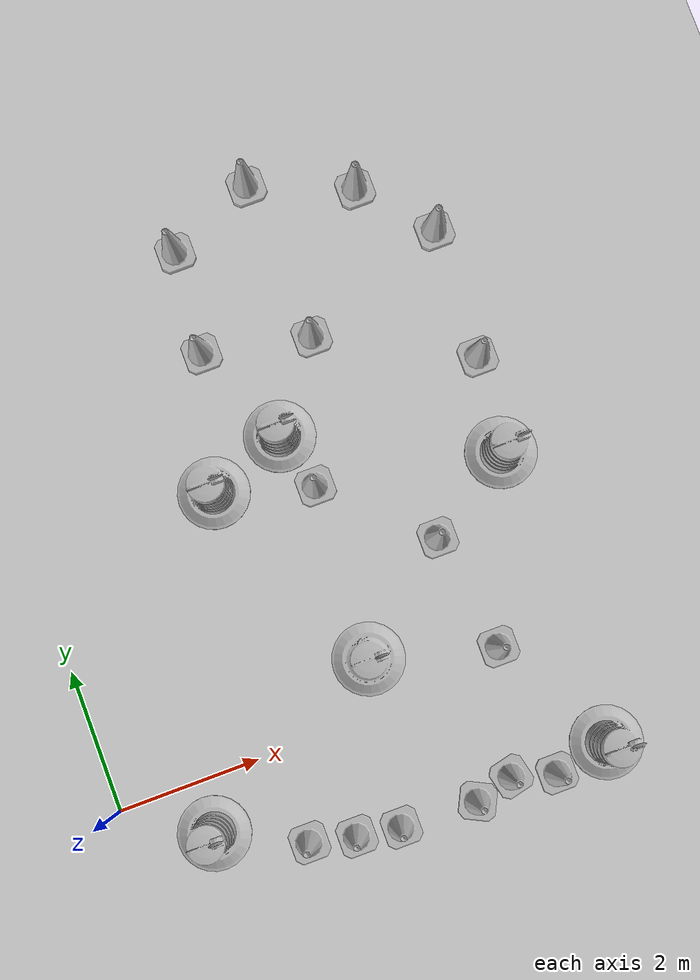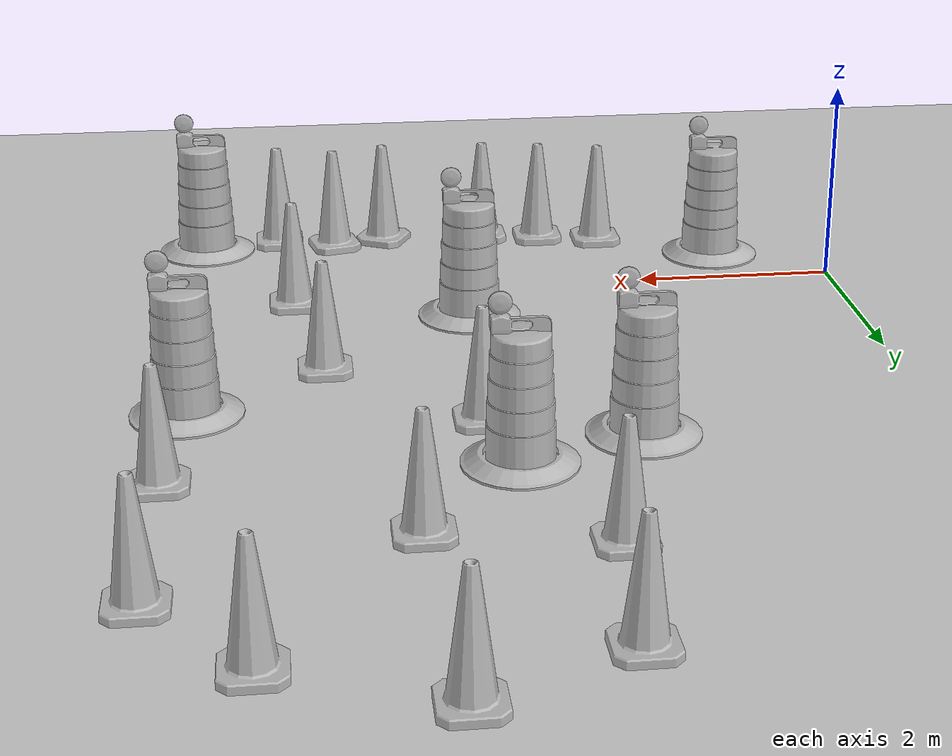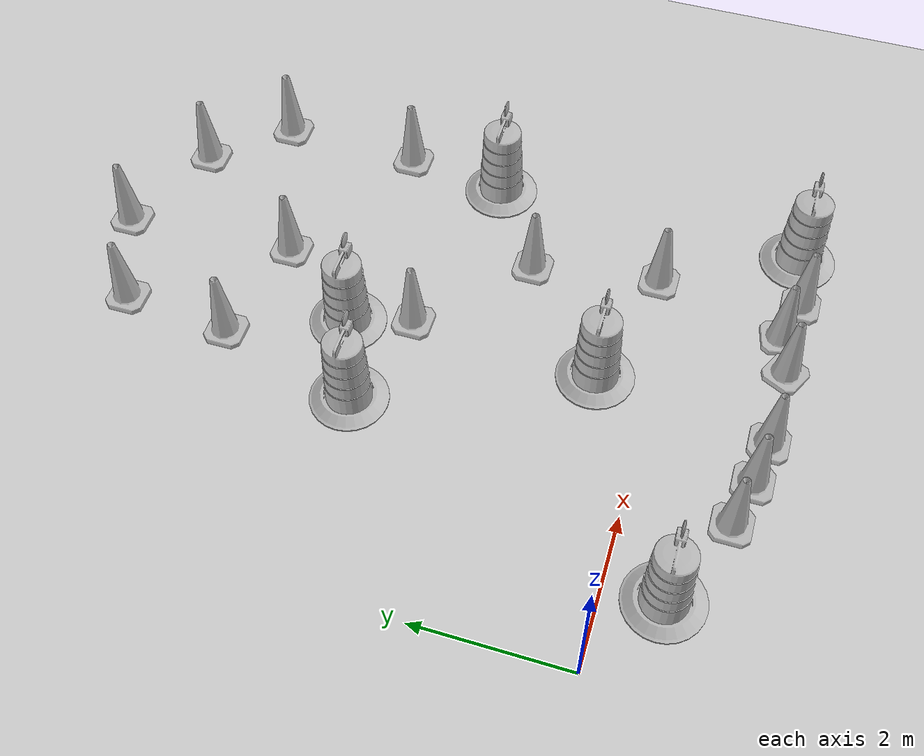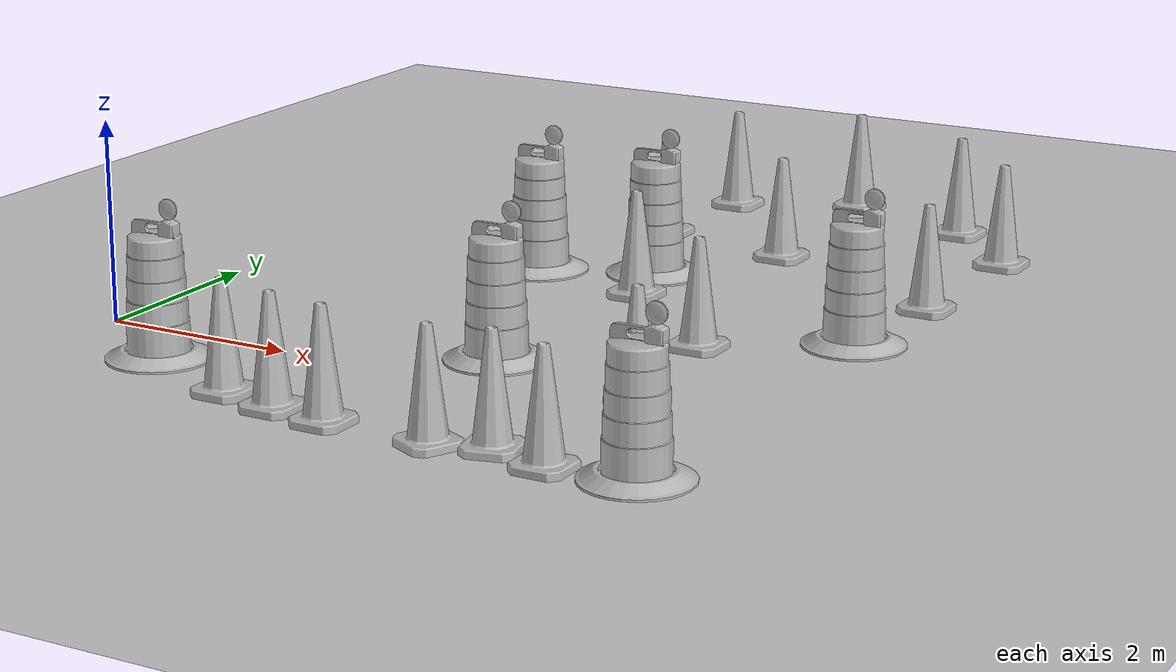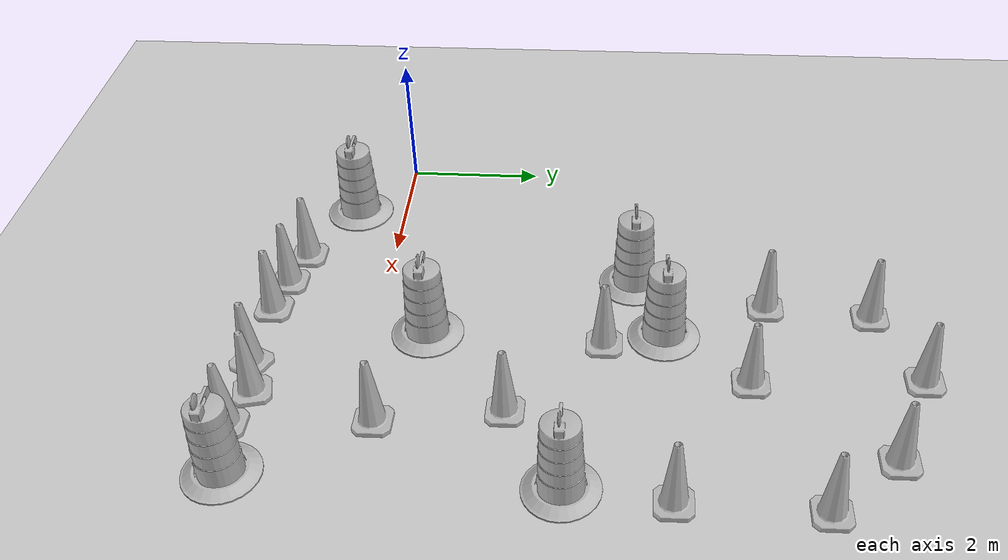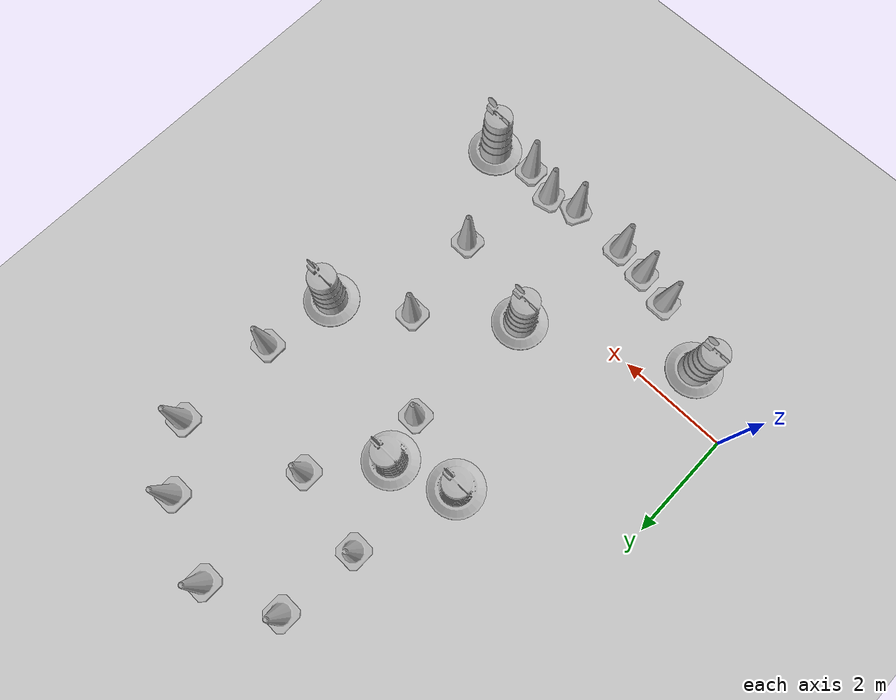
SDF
<sdf version="1.7">
 <world name="default">
  <light name="sun" type="directional">
   <pose>0 0 10 0 -0 0</pose>
   <diffuse>0.8 0.8 0.8 1</diffuse>
   <specular>0.2 0.2 0.2 1</specular>
   <attenuation>
    <range>1000</range>
    <constant>0.9</constant>
    <linear>0.01</linear>
    <quadratic>0.001</quadratic>
   </attenuation>
   <direction>-0.5 0.1 -0.9</direction>
   <spot><inner_angle>0</inner_angle><outer_angle>0</outer_angle><falloff>0</falloff></spot>
  </light>
  <model name="ground_plane">
   <static>1</static>
   <link name="link">
    <collision name="collision">
     <geometry><plane><normal>0 0 1</normal><size>100 100</size></plane></geometry>
     <surface>
      <contact><collide_bitmask>65535</collide_bitmask></contact>
      <friction><ode><mu>100</mu><mu2>50</mu2></ode></friction>
     </surface>
    </collision>
    <visual name="visual">
     <cast_shadows>0</cast_shadows>
     <geometry><plane><normal>0 0 1</normal><size>100 100</size></plane></geometry>
     <material>
      <script><uri>file://media/materials/scripts/gazebo.material</uri><name>Gazebo/Grey</name></script>
     </material>
    </visual>
   </link>
  </model>
  <gravity>0 0 -9.8</gravity>
  <magnetic_field>6e-06 2.3e-05 -4.2e-05</magnetic_field>
  <atmosphere type="adiabatic"/>
  <physics type="ode">
   <max_step_size>0.001</max_step_size>
   <real_time_factor>1</real_time_factor>
   <real_time_update_rate>1000</real_time_update_rate>
  </physics>
  <scene><ambient>0.4 0.4 0.4 1</ambient><background>0.7 0.7 0.7 1</background><shadows>1</shadows></scene>
  <spherical_coordinates>
   <surface_model>EARTH_WGS84</surface_model>
   <latitude_deg>0</latitude_deg>
   <longitude_deg>0</longitude_deg>
   <elevation>0</elevation>
   <heading_deg>0</heading_deg>
  </spherical_coordinates>
  <model name="Construction Barrel">
   <link name="link">
    <inertial>
     <pose>0 0 0.4 0 -0 0</pose>
     <mass>500</mass>
     <inertia><ixx>51.2096</ixx><iyy>51.2096</iyy><izz>25</izz><ixy>0</ixy><ixz>0</ixz><iyz>0</iyz></inertia>
    </inertial>
    <collision name="collision">
     <geometry><mesh><uri>model://construction_barrel/meshes/construction_barrel.dae</uri></mesh></geometry>
    </collision>
    <visual name="visual">
     <geometry><mesh><uri>model://construction_barrel/meshes/construction_barrel.dae</uri></mesh></geometry>
    </visual>
   </link>
   <pose>2.66675 3.645 -1e-06 4e-06 -1e-06 -3.2e-05</pose>
  </model>
  <model name="Construction Cone">
   <link name="link">
    <collision name="collision">
     <geometry>
      <mesh><scale>10 10 10</scale><uri>model://construction_cone/meshes/construction_cone.dae</uri></mesh>
     </geometry>
    </collision>
    <visual name="visual">
     <geometry>
      <mesh><scale>10 10 10</scale><uri>model://construction_cone/meshes/construction_cone.dae</uri></mesh>
     </geometry>
    </visual>
    <inertial>
     <inertia><ixx>1</ixx><ixy>0</ixy><ixz>0</ixz><iyy>1</iyy><iyz>0</iyz><izz>1</izz></inertia>
     <mass>1</mass>
    </inertial>
   </link>
   <pose>4.02109 3.24504 -8e-06 1e-06 -0 0</pose>
  </model>
  <model name="Construction Barrel_clone">
   <link name="link">
    <inertial>
     <pose>0 0 0.4 0 -0 0</pose>
     <mass>500</mass>
     <inertia><ixx>51.2096</ixx><iyy>51.2096</iyy><izz>25</izz><ixy>0</ixy><ixz>0</ixz><iyz>0</iyz></inertia>
    </inertial>
    <collision name="collision">
     <geometry><mesh><uri>model://construction_barrel/meshes/construction_barrel.dae</uri></mesh></geometry>
    </collision>
    <visual name="visual">
     <geometry><mesh><uri>model://construction_barrel/meshes/construction_barrel.dae</uri></mesh></geometry>
    </visual>
   </link>
   <pose>3.79512 4.07348 -1e-06 -8e-06 -2e-06 -2.5e-05</pose>
  </model>
  <model name="Construction Barrel_clone_0">
   <link name="link">
    <inertial>
     <pose>0 0 0.4 0 -0 0</pose>
     <mass>500</mass>
     <inertia><ixx>51.2096</ixx><iyy>51.2096</iyy><izz>25</izz><ixy>0</ixy><ixz>0</ixz><iyz>0</iyz></inertia>
    </inertial>
    <collision name="collision">
     <geometry><mesh><uri>model://construction_barrel/meshes/construction_barrel.dae</uri></mesh></geometry>
    </collision>
    <visual name="visual">
     <geometry><mesh><uri>model://construction_barrel/meshes/construction_barrel.dae</uri></mesh></geometry>
    </visual>
   </link>
   <pose>6.5977 2.79055 -2e-06 -5e-06 -4e-06 -2.8e-05</pose>
  </model>
  <model name="Construction Barrel_clone_1">
   <link name="link">
    <inertial>
     <pose>0 0 0.4 0 -0 0</pose>
     <mass>500</mass>
     <inertia><ixx>51.2096</ixx><iyy>51.2096</iyy><izz>25</izz><ixy>0</ixy><ixz>0</ixz><iyz>0</iyz></inertia>
    </inertial>
    <collision name="collision">
     <geometry><mesh><uri>model://construction_barrel/meshes/construction_barrel.dae</uri></mesh></geometry>
    </collision>
    <visual name="visual">
     <geometry><mesh><uri>model://construction_barrel/meshes/construction_barrel.dae</uri></mesh></geometry>
    </visual>
   </link>
   <pose>3.8795 0.757353 -3e-06 -6e-06 -5e-06 -2.6e-05</pose>
  </model>
  <model name="Construction Barrel_clone_2">
   <link name="link">
    <inertial>
     <pose>0 0 0.4 0 -0 0</pose>
     <mass>500</mass>
     <inertia><ixx>51.2096</ixx><iyy>51.2096</iyy><izz>25</izz><ixy>0</ixy><ixz>0</ixz><iyz>0</iyz></inertia>
    </inertial>
    <collision name="collision">
     <geometry><mesh><uri>model://construction_barrel/meshes/construction_barrel.dae</uri></mesh></geometry>
    </collision>
    <visual name="visual">
     <geometry><mesh><uri>model://construction_barrel/meshes/construction_barrel.dae</uri></mesh></geometry>
    </visual>
   </link>
   <pose>6.52717 -1.43045 -2e-06 -5e-06 -4e-06 -3e-05</pose>
  </model>
  <model name="Construction Barrel_clone_3">
   <link name="link">
    <inertial>
     <pose>0 0 0.4 0 -0 0</pose>
     <mass>500</mass>
     <inertia><ixx>51.2096</ixx><iyy>51.2096</iyy><izz>25</izz><ixy>0</ixy><ixz>0</ixz><iyz>0</iyz></inertia>
    </inertial>
    <collision name="collision">
     <geometry><mesh><uri>model://construction_barrel/meshes/construction_barrel.dae</uri></mesh></geometry>
    </collision>
    <visual name="visual">
     <geometry><mesh><uri>model://construction_barrel/meshes/construction_barrel.dae</uri></mesh></geometry>
    </visual>
   </link>
   <pose>1.09969 -0.720059 -2e-06 -5e-06 -4e-06 -2.4e-05</pose>
  </model>
  <model name="Construction Cone_clone">
   <link name="link">
    <collision name="collision">
     <geometry>
      <mesh><scale>10 10 10</scale><uri>model://construction_cone/meshes/construction_cone.dae</uri></mesh>
     </geometry>
    </collision>
    <visual name="visual">
     <geometry>
      <mesh><scale>10 10 10</scale><uri>model://construction_cone/meshes/construction_cone.dae</uri></mesh>
     </geometry>
    </visual>
    <inertial>
     <inertia><ixx>1</ixx><ixy>0</ixy><ixz>0</ixz><iyy>1</iyy><iyz>0</iyz><izz>1</izz></inertia>
     <mass>1</mass>
    </inertial>
   </link>
   <pose>2.2661 -1.28299 -8e-06 -5e-06 -0 -0</pose>
  </model>
  <model name="Construction Cone_clone_0">
   <link name="link">
    <collision name="collision">
     <geometry>
      <mesh><scale>10 10 10</scale><uri>model://construction_cone/meshes/construction_cone.dae</uri></mesh>
     </geometry>
    </collision>
    <visual name="visual">
     <geometry>
      <mesh><scale>10 10 10</scale><uri>model://construction_cone/meshes/construction_cone.dae</uri></mesh>
     </geometry>
    </visual>
    <inertial>
     <inertia><ixx>1</ixx><ixy>0</ixy><ixz>0</ixz><iyy>1</iyy><iyz>0</iyz><izz>1</izz></inertia>
     <mass>1</mass>
    </inertial>
   </link>
   <pose>2.89796 -1.4278 -1e-05 0 -0 0</pose>
  </model>
  <model name="Construction Cone_clone_1">
   <link name="link">
    <collision name="collision">
     <geometry>
      <mesh><scale>10 10 10</scale><uri>model://construction_cone/meshes/construction_cone.dae</uri></mesh>
     </geometry>
    </collision>
    <visual name="visual">
     <geometry>
      <mesh><scale>10 10 10</scale><uri>model://construction_cone/meshes/construction_cone.dae</uri></mesh>
     </geometry>
    </visual>
    <inertial>
     <inertia><ixx>1</ixx><ixy>0</ixy><ixz>0</ixz><iyy>1</iyy><iyz>0</iyz><izz>1</izz></inertia>
     <mass>1</mass>
    </inertial>
   </link>
   <pose>3.50422 -1.52358 -0 0 -0 0</pose>
  </model>
  <model name="Construction Cone_clone_2">
   <link name="link">
    <collision name="collision">
     <geometry>
      <mesh><scale>10 10 10</scale><uri>model://construction_cone/meshes/construction_cone.dae</uri></mesh>
     </geometry>
    </collision>
    <visual name="visual">
     <geometry>
      <mesh><scale>10 10 10</scale><uri>model://construction_cone/meshes/construction_cone.dae</uri></mesh>
     </geometry>
    </visual>
    <inertial>
     <inertia><ixx>1</ixx><ixy>0</ixy><ixz>0</ixz><iyy>1</iyy><iyz>0</iyz><izz>1</izz></inertia>
     <mass>1</mass>
    </inertial>
   </link>
   <pose>4.59841 -1.56102 -1e-05 -0 -0 -0.463479</pose>
  </model>
  <model name="Construction Cone_clone_3">
   <link name="link">
    <collision name="collision">
     <geometry>
      <mesh><scale>10 10 10</scale><uri>model://construction_cone/meshes/construction_cone.dae</uri></mesh>
     </geometry>
    </collision>
    <visual name="visual">
     <geometry>
      <mesh><scale>10 10 10</scale><uri>model://construction_cone/meshes/construction_cone.dae</uri></mesh>
     </geometry>
    </visual>
    <inertial>
     <inertia><ixx>1</ixx><ixy>0</ixy><ixz>0</ixz><iyy>1</iyy><iyz>0</iyz><izz>1</izz></inertia>
     <mass>1</mass>
    </inertial>
   </link>
   <pose>5.1429 -1.40776 -3e-06 -3e-06 -1e-06 0.225755</pose>
  </model>
  <model name="Construction Cone_clone_4">
   <link name="link">
    <collision name="collision">
     <geometry>
      <mesh><scale>10 10 10</scale><uri>model://construction_cone/meshes/construction_cone.dae</uri></mesh>
     </geometry>
    </collision>
    <visual name="visual">
     <geometry>
      <mesh><scale>10 10 10</scale><uri>model://construction_cone/meshes/construction_cone.dae</uri></mesh>
     </geometry>
    </visual>
    <inertial>
     <inertia><ixx>1</ixx><ixy>0</ixy><ixz>0</ixz><iyy>1</iyy><iyz>0</iyz><izz>1</izz></inertia>
     <mass>1</mass>
    </inertial>
   </link>
   <pose>5.7428 -1.58204 -0 0 -0 0</pose>
  </model>
  <model name="Construction Cone_clone_5">
   <link name="link">
    <collision name="collision">
     <geometry>
      <mesh><scale>10 10 10</scale><uri>model://construction_cone/meshes/construction_cone.dae</uri></mesh>
     </geometry>
    </collision>
    <visual name="visual">
     <geometry>
      <mesh><scale>10 10 10</scale><uri>model://construction_cone/meshes/construction_cone.dae</uri></mesh>
     </geometry>
    </visual>
    <inertial>
     <inertia><ixx>1</ixx><ixy>0</ixy><ixz>0</ixz><iyy>1</iyy><iyz>0</iyz><izz>1</izz></inertia>
     <mass>1</mass>
    </inertial>
   </link>
   <pose>5.60719 0.295129 -9e-06 0 -0 0</pose>
  </model>
  <model name="Construction Cone_clone_6">
   <link name="link">
    <collision name="collision">
     <geometry>
      <mesh><scale>10 10 10</scale><uri>model://construction_cone/meshes/construction_cone.dae</uri></mesh>
     </geometry>
    </collision>
    <visual name="visual">
     <geometry>
      <mesh><scale>10 10 10</scale><uri>model://construction_cone/meshes/construction_cone.dae</uri></mesh>
     </geometry>
    </visual>
    <inertial>
     <inertia><ixx>1</ixx><ixy>0</ixy><ixz>0</ixz><iyy>1</iyy><iyz>0</iyz><izz>1</izz></inertia>
     <mass>1</mass>
    </inertial>
   </link>
   <pose>5.3556 1.98479 -0 2e-06 -2e-06 -0</pose>
  </model>
  <model name="Construction Cone_clone_7">
   <link name="link">
    <collision name="collision">
     <geometry>
      <mesh><scale>10 10 10</scale><uri>model://construction_cone/meshes/construction_cone.dae</uri></mesh>
     </geometry>
    </collision>
    <visual name="visual">
     <geometry>
      <mesh><scale>10 10 10</scale><uri>model://construction_cone/meshes/construction_cone.dae</uri></mesh>
     </geometry>
    </visual>
    <inertial>
     <inertia><ixx>1</ixx><ixy>0</ixy><ixz>0</ixz><iyy>1</iyy><iyz>0</iyz><izz>1</izz></inertia>
     <mass>1</mass>
    </inertial>
   </link>
   <pose>4.69533 5.2299 -0 0 -1e-06 0</pose>
  </model>
  <model name="Construction Cone_clone_8">
   <link name="link">
    <collision name="collision">
     <geometry>
      <mesh><scale>10 10 10</scale><uri>model://construction_cone/meshes/construction_cone.dae</uri></mesh>
     </geometry>
    </collision>
    <visual name="visual">
     <geometry>
      <mesh><scale>10 10 10</scale><uri>model://construction_cone/meshes/construction_cone.dae</uri></mesh>
     </geometry>
    </visual>
    <inertial>
     <inertia><ixx>1</ixx><ixy>0</ixy><ixz>0</ixz><iyy>1</iyy><iyz>0</iyz><izz>1</izz></inertia>
     <mass>1</mass>
    </inertial>
   </link>
   <pose>6.77344 4.1614 -0 0 -0 0</pose>
  </model>
  <model name="Construction Cone_clone_9">
   <link name="link">
    <collision name="collision">
     <geometry>
      <mesh><scale>10 10 10</scale><uri>model://construction_cone/meshes/construction_cone.dae</uri></mesh>
     </geometry>
    </collision>
    <visual name="visual">
     <geometry>
      <mesh><scale>10 10 10</scale><uri>model://construction_cone/meshes/construction_cone.dae</uri></mesh>
     </geometry>
    </visual>
    <inertial>
     <inertia><ixx>1</ixx><ixy>0</ixy><ixz>0</ixz><iyy>1</iyy><iyz>0</iyz><izz>1</izz></inertia>
     <mass>1</mass>
    </inertial>
   </link>
   <pose>6.83953 6.05311 -5e-06 -4e-06 1e-06 0</pose>
  </model>
  <model name="Construction Cone_clone_10">
   <link name="link">
    <collision name="collision">
     <geometry>
      <mesh><scale>10 10 10</scale><uri>model://construction_cone/meshes/construction_cone.dae</uri></mesh>
     </geometry>
    </collision>
    <visual name="visual">
     <geometry>
      <mesh><scale>10 10 10</scale><uri>model://construction_cone/meshes/construction_cone.dae</uri></mesh>
     </geometry>
    </visual>
    <inertial>
     <inertia><ixx>1</ixx><ixy>0</ixy><ixz>0</ixz><iyy>1</iyy><iyz>0</iyz><izz>1</izz></inertia>
     <mass>1</mass>
    </inertial>
   </link>
   <pose>6 7 -1e-05 -1e-06 0 0</pose>
  </model>
  <model name="Construction Cone_clone_11">
   <link name="link">
    <collision name="collision">
     <geometry>
      <mesh><scale>10 10 10</scale><uri>model://construction_cone/meshes/construction_cone.dae</uri></mesh>
     </geometry>
    </collision>
    <visual name="visual">
     <geometry>
      <mesh><scale>10 10 10</scale><uri>model://construction_cone/meshes/construction_cone.dae</uri></mesh>
     </geometry>
    </visual>
    <inertial>
     <inertia><ixx>1</ixx><ixy>0</ixy><ixz>0</ixz><iyy>1</iyy><iyz>0</iyz><izz>1</izz></inertia>
     <mass>1</mass>
    </inertial>
   </link>
   <pose>4.57343 7.56665 -0 0 -0 0</pose>
  </model>
  <model name="Construction Cone_clone_12">
   <link name="link">
    <collision name="collision">
     <geometry>
      <mesh><scale>10 10 10</scale><uri>model://construction_cone/meshes/construction_cone.dae</uri></mesh>
     </geometry>
    </collision>
    <visual name="visual">
     <geometry>
      <mesh><scale>10 10 10</scale><uri>model://construction_cone/meshes/construction_cone.dae</uri></mesh>
     </geometry>
    </visual>
    <inertial>
     <inertia><ixx>1</ixx><ixy>0</ixy><ixz>0</ixz><iyy>1</iyy><iyz>0</iyz><izz>1</izz></inertia>
     <mass>1</mass>
    </inertial>
   </link>
   <pose>3.31189 7.01627 -0 0 -0 0</pose>
  </model>
  <model name="Construction Cone_clone_13">
   <link name="link">
    <collision name="collision">
     <geometry>
      <mesh><scale>10 10 10</scale><uri>model://construction_cone/meshes/construction_cone.dae</uri></mesh>
     </geometry>
    </collision>
    <visual name="visual">
     <geometry>
      <mesh><scale>10 10 10</scale><uri>model://construction_cone/meshes/construction_cone.dae</uri></mesh>
     </geometry>
    </visual>
    <inertial>
     <inertia><ixx>1</ixx><ixy>0</ixy><ixz>0</ixz><iyy>1</iyy><iyz>0</iyz><izz>1</izz></inertia>
     <mass>1</mass>
    </inertial>
   </link>
   <pose>3.17233 5.53831 -0 0 -1e-06 0</pose>
  </model>
 </world>
</sdf>
